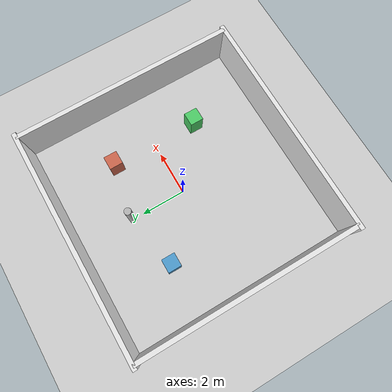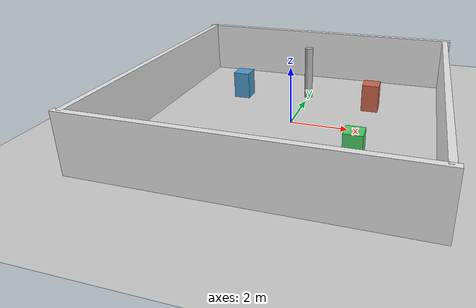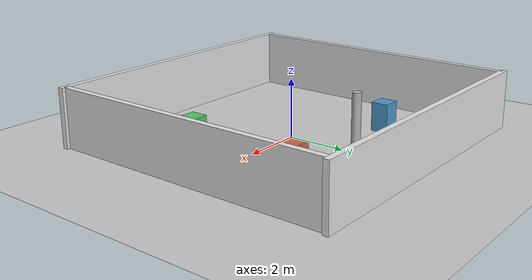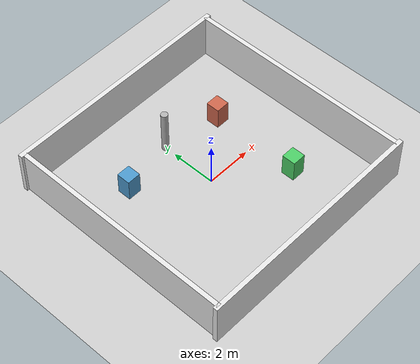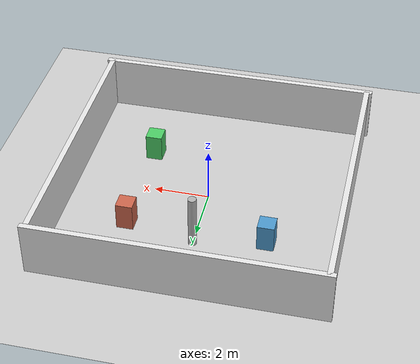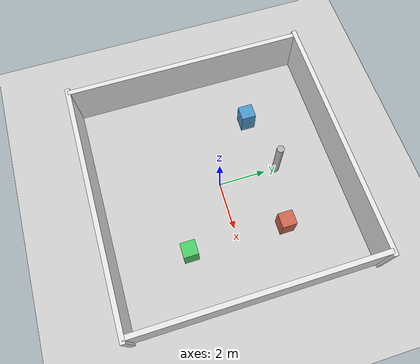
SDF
<?xml version="1.0" ?>
<sdf version="1.6">
  <world name="empty">
    <physics name="1ms" type="ignored">
      <max_step_size>0.001</max_step_size>
      <real_time_factor>1.0</real_time_factor>
    </physics>

    <plugin filename="gz-sim-physics-system"
            name="gz::sim::systems::Physics"/>
    <plugin filename="gz-sim-user-commands-system"
            name="gz::sim::systems::UserCommands"/>
    <plugin filename="gz-sim-scene-broadcaster-system"
            name="gz::sim::systems::SceneBroadcaster"/>
    <plugin filename="gz-sim-contact-system"
            name="gz::sim::systems::Contact"/>
    <plugin filename="gz-sim-sensors-system"
            name="gz::sim::systems::Sensors">
      <render_engine>ogre2</render_engine>
    </plugin>
    <plugin filename="gz-sim-imu-system"
            name="gz::sim::systems::Imu"/>

    <light type="directional" name="sun">
      <cast_shadows>false</cast_shadows>
      <pose>0 0 10 0 0 0</pose>
      <diffuse>0.8 0.8 0.8 1</diffuse>
      <specular>0.2 0.2 0.2 1</specular>
      <attenuation>
        <range>1000</range>
        <constant>0.9</constant>
        <linear>0.01</linear>
        <quadratic>0.001</quadratic>
      </attenuation>
      <direction>-0.5 0.1 -0.9</direction>
    </light>

    <model name="ground_plane">
      <static>true</static>
      <link name="link">
        <collision name="collision">
          <geometry>
            <plane><normal>0 0 1</normal><size>100 100</size></plane>
          </geometry>
        </collision>
        <visual name="visual">
          <geometry>
            <plane><normal>0 0 1</normal><size>100 100</size></plane>
          </geometry>
          <material>
            <ambient>0.8 0.8 0.8 1</ambient>
            <diffuse>0.8 0.8 0.8 1</diffuse>
          </material>
        </visual>
      </link>
    </model>

    <!-- Perimeter walls (10 x 10 m room) -->
    <model name="wall_north"><static>true</static><pose>0 5 1 0 0 0</pose>
      <link name="l"><collision name="c"><geometry><box><size>10.4 0.2 2.0</size></box></geometry></collision>
        <visual name="v"><geometry><box><size>10.4 0.2 2.0</size></box></geometry>
          <material><ambient>0.8 0.8 0.8 1</ambient><diffuse>0.9 0.9 0.9 1</diffuse></material></visual></link></model>
    <model name="wall_south"><static>true</static><pose>0 -5 1 0 0 0</pose>
      <link name="l"><collision name="c"><geometry><box><size>10.4 0.2 2.0</size></box></geometry></collision>
        <visual name="v"><geometry><box><size>10.4 0.2 2.0</size></box></geometry>
          <material><ambient>0.8 0.8 0.8 1</ambient><diffuse>0.9 0.9 0.9 1</diffuse></material></visual></link></model>
    <model name="wall_east"><static>true</static><pose>5 0 1 0 0 0</pose>
      <link name="l"><collision name="c"><geometry><box><size>0.2 10.0 2.0</size></box></geometry></collision>
        <visual name="v"><geometry><box><size>0.2 10.0 2.0</size></box></geometry>
          <material><ambient>0.8 0.8 0.8 1</ambient><diffuse>0.9 0.9 0.9 1</diffuse></material></visual></link></model>
    <model name="wall_west"><static>true</static><pose>-5 0 1 0 0 0</pose>
      <link name="l"><collision name="c"><geometry><box><size>0.2 10.0 2.0</size></box></geometry></collision>
        <visual name="v"><geometry><box><size>0.2 10.0 2.0</size></box></geometry>
          <material><ambient>0.8 0.8 0.8 1</ambient><diffuse>0.9 0.9 0.9 1</diffuse></material></visual></link></model>

    <!-- Interior obstacles -->
    <model name="box_a"><static>true</static><pose>2.5 2.0 0.5 0 0 0</pose>
      <link name="l"><collision name="c"><geometry><box><size>0.6 0.6 1.0</size></box></geometry></collision>
        <visual name="v"><geometry><box><size>0.6 0.6 1.0</size></box></geometry>
          <material><ambient>0.7 0.3 0.2 1</ambient><diffuse>0.8 0.4 0.3 1</diffuse></material></visual></link></model>
    <model name="box_b"><static>true</static><pose>-2.5 2.0 0.5 0 0 0</pose>
      <link name="l"><collision name="c"><geometry><box><size>0.6 0.6 1.0</size></box></geometry></collision>
        <visual name="v"><geometry><box><size>0.6 0.6 1.0</size></box></geometry>
          <material><ambient>0.2 0.5 0.7 1</ambient><diffuse>0.3 0.6 0.8 1</diffuse></material></visual></link></model>
    <model name="box_c"><static>true</static><pose>2.5 -2.0 0.5 0 0 0</pose>
      <link name="l"><collision name="c"><geometry><box><size>0.6 0.6 1.0</size></box></geometry></collision>
        <visual name="v"><geometry><box><size>0.6 0.6 1.0</size></box></geometry>
          <material><ambient>0.2 0.7 0.3 1</ambient><diffuse>0.3 0.8 0.4 1</diffuse></material></visual></link></model>
    <model name="pillar_centre"><static>true</static><pose>0 2.5 1 0 0 0</pose>
      <link name="l"><collision name="c"><geometry><cylinder><radius>0.15</radius><length>2.0</length></cylinder></geometry></collision>
        <visual name="v"><geometry><cylinder><radius>0.15</radius><length>2.0</length></cylinder></geometry>
          <material><ambient>0.6 0.6 0.6 1</ambient><diffuse>0.7 0.7 0.7 1</diffuse></material></visual></link></model>

  </world>
</sdf>
